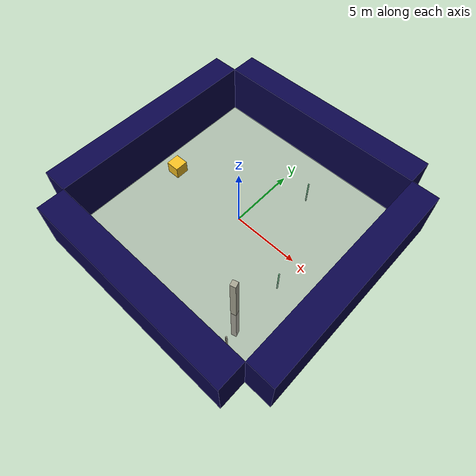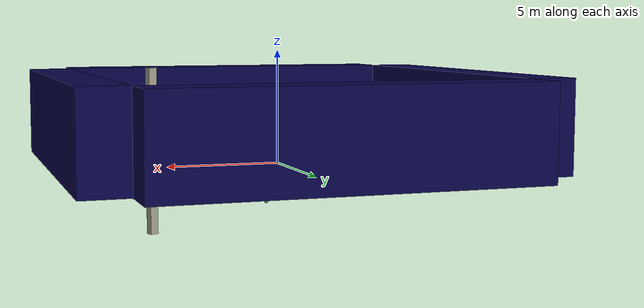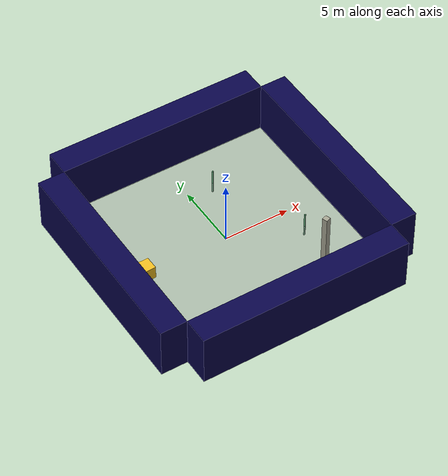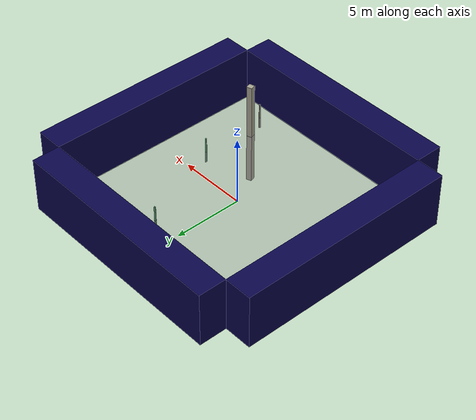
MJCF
<mujoco model="unnamed_model">
  <default>
    <default class="/" />
    <default class="border/" />
    <default class="border_1/" />
    <default class="border_2/" />
    <default class="border_3/" />
    <default class="light/" />
    <default class="agent/" />
    <default class="stone0/" />
    <default class="stone1/" />
    <default class="apple/" />
    <default class="apple_1/" />
  </default>
  <worldbody>
    <body name="border/">
      <body name="border/border" pos="0 9 2">
        <geom name="border/border_geom" class="border/" type="box" size="8.0 1.0 2.0" rgba="0.035 0.016 0.29 1.0" />
      </body>
    </body>
    <body name="border_1/">
      <body name="border_1/border" pos="0 -9 2">
        <geom name="border_1/border_geom" class="border_1/" type="box" size="8.0 1.0 2.0" rgba="0.035 0.016 0.29 1.0" />
      </body>
    </body>
    <body name="border_2/">
      <body name="border_2/border" pos="9 0 2">
        <geom name="border_2/border_geom" class="border_2/" type="box" size="1.0 8.0 2.0" rgba="0.035 0.016 0.29 1.0" />
      </body>
    </body>
    <body name="border_3/">
      <body name="border_3/border" pos="-9 0 2">
        <geom name="border_3/border_geom" class="border_3/" type="box" size="1.0 8.0 2.0" rgba="0.035 0.016 0.29 1.0" />
      </body>
    </body>
    <body name="light/">
      <body name="light/light" pos="0 0 15">
        <geom name="light/light_geom" class="light/" size="0.5" rgba="1.0 1.0 1.0 0.0" />
        <light name="light//unnamed_light_0" class="light/" />
      </body>
    </body>
    <body euler="0 0 270.87959102933684" name="agent/" pos="-6.4000000000000004 0 0.5">
      <joint name="agent/boxagent_freeJoint/" class="/" type="free" />
      <body name="agent/agent" pos="0 0 0" euler="0 0 0">
        <geom name="agent/boxagent_geom" class="agent/" type="box" size="0.5 0.5 0.5" rgba="0.949 0.7451 0.1333 1.0" euler="0 0 0" />
        <camera name="agent/boxagent_camera" class="agent/" fovy="90" pos="0 0 0.25" euler="-90 180 0" />
      </body>
    </body>
    <body name="stone0/">
      <body name="stone0/stone0" pos="4.6059999999999999 -5.2788000000000004 0.10000000000000001" euler="0 0 107.42507256347898">
        <geom name="stone0/stone_geom" class="stone0/" type="box" size="0.2 0.2 4.0" rgba="0.6470588235294118 0.6392156862745098 0.5686274509803921 1.0" />
      </body>
    </body>
    <body name="stone1/">
      <body name="stone1/stone1" pos="2.1406000000000001 5.0970000000000013 0.10000000000000001" euler="0 0 -152.25523211970108">
        <geom name="stone1/stone_geom" class="stone1/" type="box" size="0.05 0.05 1.0" rgba="0.396078431372549 0.6705882352941176 0.48627450980392156 1.0" />
      </body>
    </body>
    <body name="apple/">
      <body name="apple/apple" pos="5.2649499999999998 -1.8414999999999999 0.10000000000000001" euler="0 0 -148.25329381705615">
        <geom name="apple/apple_geom" class="apple/" type="box" size="0.05 0.05 1.0" rgba="0.396078431372549 0.6705882352941176 0.48627450980392156 1.0" />
      </body>
    </body>
    <body name="apple_1/">
      <body name="apple_1/apple" pos="5.6399499999999998 -7.0803000000000003 0.10000000000000001" euler="0 0 -23.597216465470666">
        <geom name="apple_1/apple_geom" class="apple_1/" type="box" size="0.05 0.05 1.0" rgba="0.6470588235294118 0.6392156862745098 0.5686274509803921 1.0" />
      </body>
    </body>
    <geom name="base_plane" class="/" type="plane" size="8 8 0.10000000000000001" />
  </worldbody>
</mujoco>
